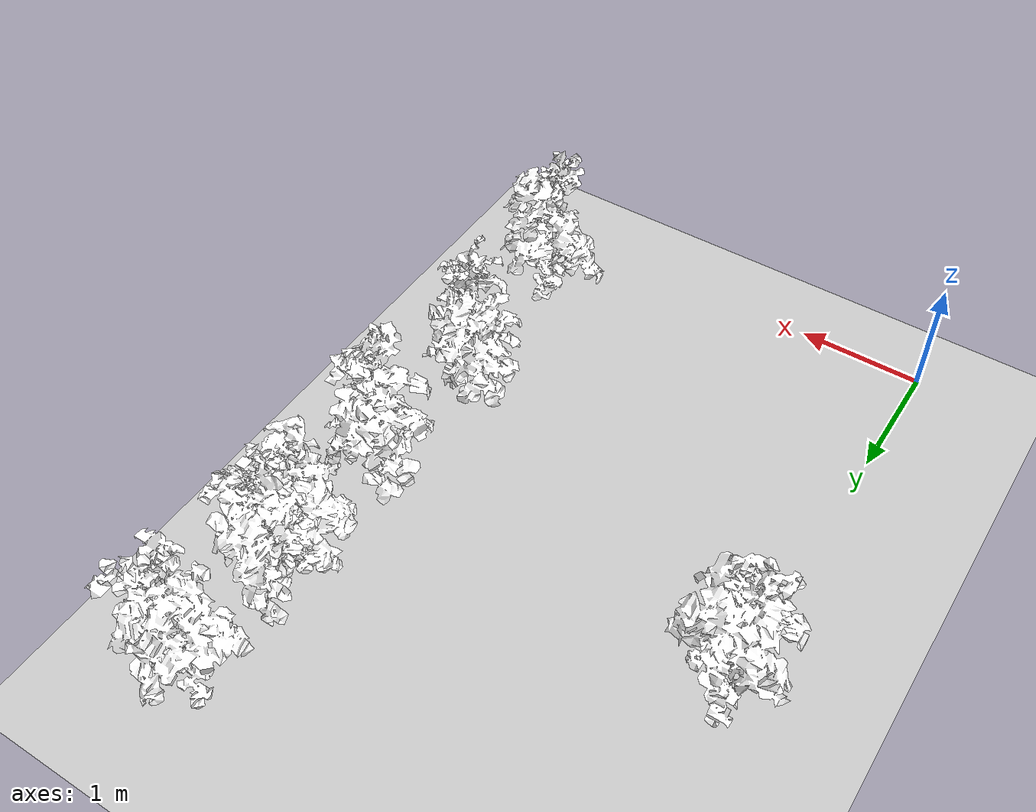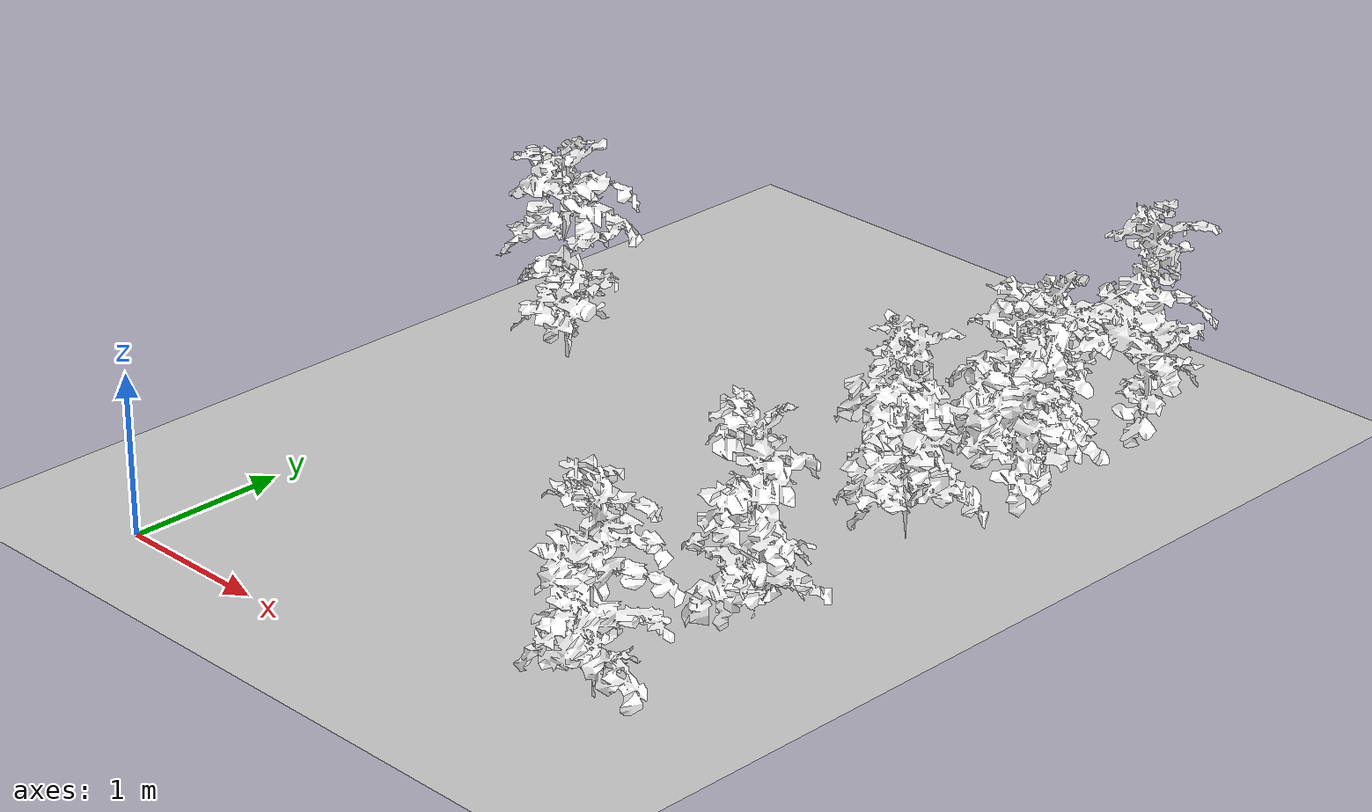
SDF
<sdf version="1.7">
 <world name="field">
  <physics name="1ms" type="ignored">
   <max_step_size>0.001</max_step_size>
   <real_time_factor>1</real_time_factor>
   <real_time_update_rate>1000</real_time_update_rate>
  </physics>
  <plugin name="ignition::gazebo::systems::Physics" filename="ignition-gazebo-physics-system"/>
  <plugin name="ignition::gazebo::systems::UserCommands" filename="ignition-gazebo-user-commands-system"/>
  <plugin name="ignition::gazebo::systems::SceneBroadcaster" filename="ignition-gazebo-scene-broadcaster-system"/>
  <plugin filename="ignition-gazebo-sensors-system" name="ignition::gazebo::systems::Sensors">
   <render_engine>ogre2</render_engine>
  </plugin>
  <scene><ambient>1 1 1 1</ambient><background>0.8 0.8 0.8 1</background><shadows>1</shadows></scene>
  <light name="sun" type="directional">
   <pose>0 0 10 0 -0 0</pose>
   <diffuse>0.8 0.8 0.8 1</diffuse>
   <specular>0.8 0.8 0.8 1</specular>
   <attenuation>
    <range>1000</range>
    <constant>0.9</constant>
    <linear>0.01</linear>
    <quadratic>0.001</quadratic>
   </attenuation>
   <direction>-0.5 0.1 -0.9</direction>
   <spot><inner_angle>0</inner_angle><outer_angle>0</outer_angle><falloff>0</falloff></spot>
  </light>
  <gravity>0 0 -9.8</gravity>
  <magnetic_field>6e-06 2.3e-05 -4.2e-05</magnetic_field>
  <atmosphere type="adiabatic"/>
  <include><uri>ground</uri><name>ground</name><pose>5.0 5.0 0 0 0 0</pose></include>
  <include><uri>tomato_11</uri><name>tomato_11</name><pose>0.0 3.3 0 0 0 0</pose></include>
  <include><uri>tomato_101</uri><name>tomato_101</name><pose>3.0999999999999996 0.6 0 0 0 0</pose></include>
  <include>
   <uri>tomato_105</uri>
   <name>tomato_105</name>
   <pose>3.0999999999999996 1.7999999999999998 0 0 0 0</pose>
  </include>
  <include><uri>tomato_109</uri><name>tomato_109</name><pose>3.0999999999999996 3.0 0 0 0 0</pose></include>
  <include><uri>tomato_112</uri><name>tomato_112</name><pose>3.0999999999999996 3.9 0 0 0 0</pose></include>
  <include><uri>tomato_113</uri><name>tomato_113</name><pose>3.0999999999999996 4.2 0 0 0 0</pose></include>
  <include><uri>tomato_116</uri><name>tomato_116</name><pose>3.0999999999999996 5.1 0 0 0 0</pose></include>
 </world>
</sdf>

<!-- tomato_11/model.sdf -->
<sdf version="1.6">
  <model name="tomato_11">
    <static>true</static>
    <link name="link">
      <collision name="collision">
        <geometry>
          <box>
            <size>.1 .1 1</size>
          </box>
        </geometry>
      </collision>
      <visual name="branch">
        <geometry>
          <mesh>
            <uri>file://tomato_11/meshes/tomato.dae</uri>
            <submesh>
              <name>Branch1</name>
            </submesh>
          </mesh>
        </geometry>
        <material>
          <diffuse>1.0 1.0 1.0</diffuse>
          <pbr>
            <metal>
              <albedo_map>file://tomato_11/materials/textures/AG15brn1.png</albedo_map>
            </metal>
          </pbr>
        </material>
          <plugin filename="ignition-gazebo-label-system" name="ignition::gazebo::systems::Label">
            <label>2</label>
          </plugin>
      </visual>
      <visual name="leaf1">
        <geometry>
          <mesh>
            <uri>file://tomato_11/meshes/tomato.dae</uri>
            <submesh>
              <name>Leaf1</name>
            </submesh>
          </mesh>
        </geometry>
        <material>
          <diffuse>1.0 1.0 1.0</diffuse>
          <pbr>
            <metal>
              <albedo_map>file://tomato_11/materials/textures/AG15lef1.png</albedo_map>
            </metal>
          </pbr>
        </material>
          <plugin filename="ignition-gazebo-label-system" name="ignition::gazebo::systems::Label">
            <label>3</label>
          </plugin>
      </visual>
      <visual name="leaf2">
        <geometry>
          <mesh>
            <uri>file://tomato_11/meshes/tomato.dae</uri>
            <submesh>
              <name>Leaf2</name>
            </submesh>
          </mesh>
        </geometry>
        <material>
          <diffuse>1.0 1.0 1.0</diffuse>
          <pbr>
            <metal>
              <albedo_map>file://tomato_11/materials/textures/AG15lef2.png</albedo_map>
            </metal>
          </pbr>
        </material>
          <plugin filename="ignition-gazebo-label-system" name="ignition::gazebo::systems::Label">
            <label>3</label>
          </plugin>
      </visual>
      <visual name="fruit1">
        <geometry>
          <mesh>
            <uri>file://tomato_11/meshes/tomato.dae</uri>
            <submesh>
              <name>Fruit1</name>
            </submesh>
          </mesh>
        </geometry>
        <material>
          <diffuse>1.0 1.0 1.0</diffuse>
          <pbr>
            <metal>
              <albedo_map>file://tomato_11/materials/textures/AG15frt1.png</albedo_map>
            </metal>
          </pbr>
        </material>
          <plugin filename="ignition-gazebo-label-system" name="ignition::gazebo::systems::Label">
            <label>4</label>
          </plugin>
      </visual>
      <visual name="fruit2">
        <geometry>
          <mesh>
            <uri>file://tomato_11/meshes/tomato.dae</uri>
            <submesh>
              <name>Fruit2</name>
            </submesh>
          </mesh>
        </geometry>
        <material>
          <diffuse>1.0 1.0 1.0</diffuse>
          <pbr>
            <metal>
              <albedo_map>file://tomato_11/materials/textures/AG15frt2.png</albedo_map>
            </metal>
          </pbr>
        </material>
          <plugin filename="ignition-gazebo-label-system" name="ignition::gazebo::systems::Label">
            <label>4</label>
          </plugin>
      </visual>
      <visual name="fruit3">
        <geometry>
          <mesh>
            <uri>file://tomato_11/meshes/tomato.dae</uri>
            <submesh>
              <name>Fruit3</name>
            </submesh>
          </mesh>
        </geometry>
        <material>
          <diffuse>1.0 1.0 1.0</diffuse>
          <pbr>
            <metal>
              <albedo_map>file://tomato_11/materials/textures/AG15frt3.png</albedo_map>
            </metal>
          </pbr>
        </material>
      </visual>
          <plugin filename="ignition-gazebo-label-system" name="ignition::gazebo::systems::Label">
            <label>4</label>
          </plugin>
      <visual name="fruit4">
        <geometry>
          <mesh>
            <uri>file://tomato_11/meshes/tomato.dae</uri>
            <submesh>
              <name>Fruit4</name>
            </submesh>
          </mesh>
        </geometry>
        <material>
          <diffuse>1.0 1.0 1.0</diffuse>
          <pbr>
            <metal>
              <albedo_map>file://tomato_11/materials/textures/AG15frt4.png</albedo_map>
            </metal>
          </pbr>
        </material>
          <plugin filename="ignition-gazebo-label-system" name="ignition::gazebo::systems::Label">
            <label>4</label>
          </plugin>
      </visual>
      <visual name="blossom1">
        <geometry>
          <mesh>
            <uri>file://tomato_11/meshes/tomato.dae</uri>
            <submesh>
              <name>Blossom1</name>
            </submesh>
          </mesh>
        </geometry>
        <material>
          <diffuse>1.0 1.0 1.0</diffuse>
          <pbr>
            <metal>
              <albedo_map>file://tomato_11/materials/textures/AG15blo1.png</albedo_map>
            </metal>
          </pbr>
        </material>
          <plugin filename="ignition-gazebo-label-system" name="ignition::gazebo::systems::Label">
            <label>5</label>
          </plugin>
      </visual>
      <visual name="blossom2">
        <geometry>
          <mesh>
            <uri>file://tomato_11/meshes/tomato.dae</uri>
            <submesh>
              <name>Blossom2</name>
            </submesh>
          </mesh>
        </geometry>
        <material>
          <diffuse>1.0 1.0 1.0</diffuse>
          <pbr>
            <metal>
              <albedo_map>file://tomato_11/materials/textures/AG15blo2.png</albedo_map>
            </metal>
          </pbr>
        </material>
          <plugin filename="ignition-gazebo-label-system" name="ignition::gazebo::systems::Label">
            <label>5</label>
          </plugin>
      </visual>
      <visual name="blossom3">
        <geometry>
          <mesh>
            <uri>file://tomato_11/meshes/tomato.dae</uri>
            <submesh>
              <name>Blossom3</name>
            </submesh>
          </mesh>
        </geometry>
        <material>
          <diffuse>1.0 1.0 1.0</diffuse>
          <pbr>
            <metal>
              <albedo_map>file://tomato_11/materials/textures/AG15blo3.png</albedo_map>
            </metal>
          </pbr>
        </material>
          <plugin filename="ignition-gazebo-label-system" name="ignition::gazebo::systems::Label">
            <label>5</label>
          </plugin>
      </visual>
    </link>
  </model>
</sdf>

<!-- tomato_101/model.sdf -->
<sdf version="1.6">
  <model name="tomato_101">
    <static>true</static>
    <link name="link">
      <collision name="collision">
        <geometry>
          <box>
            <size>.1 .1 1</size>
          </box>
        </geometry>
      </collision>
      <visual name="branch">
        <geometry>
          <mesh>
            <uri>file://tomato_101/meshes/tomato.dae</uri>
            <submesh>
              <name>Branch1</name>
            </submesh>
          </mesh>
        </geometry>
        <material>
          <diffuse>1.0 1.0 1.0</diffuse>
          <pbr>
            <metal>
              <albedo_map>file://tomato_101/materials/textures/AG15brn1.png</albedo_map>
            </metal>
          </pbr>
        </material>
      </visual>
      <visual name="leaf1">
        <geometry>
          <mesh>
            <uri>file://tomato_101/meshes/tomato.dae</uri>
            <submesh>
              <name>Leaf1</name>
            </submesh>
          </mesh>
        </geometry>
        <material>
          <diffuse>1.0 1.0 1.0</diffuse>
          <pbr>
            <metal>
              <albedo_map>file://tomato_101/materials/textures/AG15lef1.png</albedo_map>
            </metal>
          </pbr>
        </material>
      </visual>
      <visual name="leaf2">
        <geometry>
          <mesh>
            <uri>file://tomato_101/meshes/tomato.dae</uri>
            <submesh>
              <name>Leaf2</name>
            </submesh>
          </mesh>
        </geometry>
        <material>
          <diffuse>1.0 1.0 1.0</diffuse>
          <pbr>
            <metal>
              <albedo_map>file://tomato_101/materials/textures/AG15lef2.png</albedo_map>
            </metal>
          </pbr>
        </material>
      </visual>
      <visual name="fruit1">
        <geometry>
          <mesh>
            <uri>file://tomato_101/meshes/tomato.dae</uri>
            <submesh>
              <name>Fruit1</name>
            </submesh>
          </mesh>
        </geometry>
        <material>
          <diffuse>1.0 1.0 1.0</diffuse>
          <pbr>
            <metal>
              <albedo_map>file://tomato_101/materials/textures/AG15frt1.png</albedo_map>
            </metal>
          </pbr>
        </material>
      </visual>
      <visual name="fruit2">
        <geometry>
          <mesh>
            <uri>file://tomato_101/meshes/tomato.dae</uri>
            <submesh>
              <name>Fruit2</name>
            </submesh>
          </mesh>
        </geometry>
        <material>
          <diffuse>1.0 1.0 1.0</diffuse>
          <pbr>
            <metal>
              <albedo_map>file://tomato_101/materials/textures/AG15frt2.png</albedo_map>
            </metal>
          </pbr>
        </material>
      </visual>
      <visual name="fruit3">
        <geometry>
          <mesh>
            <uri>file://tomato_101/meshes/tomato.dae</uri>
            <submesh>
              <name>Fruit3</name>
            </submesh>
          </mesh>
        </geometry>
        <material>
          <diffuse>1.0 1.0 1.0</diffuse>
          <pbr>
            <metal>
              <albedo_map>file://tomato_101/materials/textures/AG15frt3.png</albedo_map>
            </metal>
          </pbr>
        </material>
      </visual>
      <visual name="fruit4">
        <geometry>
          <mesh>
            <uri>file://tomato_101/meshes/tomato.dae</uri>
            <submesh>
              <name>Fruit4</name>
            </submesh>
          </mesh>
        </geometry>
        <material>
          <diffuse>1.0 1.0 1.0</diffuse>
          <pbr>
            <metal>
              <albedo_map>file://tomato_101/materials/textures/AG15frt4.png</albedo_map>
            </metal>
          </pbr>
        </material>
      </visual>
      <visual name="blossom1">
        <geometry>
          <mesh>
            <uri>file://tomato_101/meshes/tomato.dae</uri>
            <submesh>
              <name>Blossom1</name>
            </submesh>
          </mesh>
        </geometry>
        <material>
          <diffuse>1.0 1.0 1.0</diffuse>
          <pbr>
            <metal>
              <albedo_map>file://tomato_101/materials/textures/AG15blo1.png</albedo_map>
            </metal>
          </pbr>
        </material>
      </visual>
      <visual name="blossom2">
        <geometry>
          <mesh>
            <uri>file://tomato_101/meshes/tomato.dae</uri>
            <submesh>
              <name>Blossom2</name>
            </submesh>
          </mesh>
        </geometry>
        <material>
          <diffuse>1.0 1.0 1.0</diffuse>
          <pbr>
            <metal>
              <albedo_map>file://tomato_101/materials/textures/AG15blo2.png</albedo_map>
            </metal>
          </pbr>
        </material>
      </visual>
      <visual name="blossom3">
        <geometry>
          <mesh>
            <uri>file://tomato_101/meshes/tomato.dae</uri>
            <submesh>
              <name>Blossom3</name>
            </submesh>
          </mesh>
        </geometry>
        <material>
          <diffuse>1.0 1.0 1.0</diffuse>
          <pbr>
            <metal>
              <albedo_map>file://tomato_101/materials/textures/AG15blo3.png</albedo_map>
            </metal>
          </pbr>
        </material>
      </visual>
    </link>
  </model>
</sdf>

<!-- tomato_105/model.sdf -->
<sdf version="1.6">
  <model name="tomato_105">
    <static>true</static>
    <link name="link">
      <collision name="collision">
        <geometry>
          <box>
            <size>.1 .1 1</size>
          </box>
        </geometry>
      </collision>
      <visual name="branch">
        <geometry>
          <mesh>
            <uri>file://tomato_105/meshes/tomato.dae</uri>
            <submesh>
              <name>Branch1</name>
            </submesh>
          </mesh>
        </geometry>
        <material>
          <diffuse>1.0 1.0 1.0</diffuse>
          <pbr>
            <metal>
              <albedo_map>file://tomato_105/materials/textures/AG15brn1.png</albedo_map>
            </metal>
          </pbr>
        </material>
      </visual>
      <visual name="leaf1">
        <geometry>
          <mesh>
            <uri>file://tomato_105/meshes/tomato.dae</uri>
            <submesh>
              <name>Leaf1</name>
            </submesh>
          </mesh>
        </geometry>
        <material>
          <diffuse>1.0 1.0 1.0</diffuse>
          <pbr>
            <metal>
              <albedo_map>file://tomato_105/materials/textures/AG15lef1.png</albedo_map>
            </metal>
          </pbr>
        </material>
      </visual>
      <visual name="leaf2">
        <geometry>
          <mesh>
            <uri>file://tomato_105/meshes/tomato.dae</uri>
            <submesh>
              <name>Leaf2</name>
            </submesh>
          </mesh>
        </geometry>
        <material>
          <diffuse>1.0 1.0 1.0</diffuse>
          <pbr>
            <metal>
              <albedo_map>file://tomato_105/materials/textures/AG15lef2.png</albedo_map>
            </metal>
          </pbr>
        </material>
      </visual>
      <visual name="fruit1">
        <geometry>
          <mesh>
            <uri>file://tomato_105/meshes/tomato.dae</uri>
            <submesh>
              <name>Fruit1</name>
            </submesh>
          </mesh>
        </geometry>
        <material>
          <diffuse>1.0 1.0 1.0</diffuse>
          <pbr>
            <metal>
              <albedo_map>file://tomato_105/materials/textures/AG15frt1.png</albedo_map>
            </metal>
          </pbr>
        </material>
      </visual>
      <visual name="fruit2">
        <geometry>
          <mesh>
            <uri>file://tomato_105/meshes/tomato.dae</uri>
            <submesh>
              <name>Fruit2</name>
            </submesh>
          </mesh>
        </geometry>
        <material>
          <diffuse>1.0 1.0 1.0</diffuse>
          <pbr>
            <metal>
              <albedo_map>file://tomato_105/materials/textures/AG15frt2.png</albedo_map>
            </metal>
          </pbr>
        </material>
      </visual>
      <visual name="fruit3">
        <geometry>
          <mesh>
            <uri>file://tomato_105/meshes/tomato.dae</uri>
            <submesh>
              <name>Fruit3</name>
            </submesh>
          </mesh>
        </geometry>
        <material>
          <diffuse>1.0 1.0 1.0</diffuse>
          <pbr>
            <metal>
              <albedo_map>file://tomato_105/materials/textures/AG15frt3.png</albedo_map>
            </metal>
          </pbr>
        </material>
      </visual>
      <visual name="fruit4">
        <geometry>
          <mesh>
            <uri>file://tomato_105/meshes/tomato.dae</uri>
            <submesh>
              <name>Fruit4</name>
            </submesh>
          </mesh>
        </geometry>
        <material>
          <diffuse>1.0 1.0 1.0</diffuse>
          <pbr>
            <metal>
              <albedo_map>file://tomato_105/materials/textures/AG15frt4.png</albedo_map>
            </metal>
          </pbr>
        </material>
      </visual>
      <visual name="blossom1">
        <geometry>
          <mesh>
            <uri>file://tomato_105/meshes/tomato.dae</uri>
            <submesh>
              <name>Blossom1</name>
            </submesh>
          </mesh>
        </geometry>
        <material>
          <diffuse>1.0 1.0 1.0</diffuse>
          <pbr>
            <metal>
              <albedo_map>file://tomato_105/materials/textures/AG15blo1.png</albedo_map>
            </metal>
          </pbr>
        </material>
      </visual>
      <visual name="blossom2">
        <geometry>
          <mesh>
            <uri>file://tomato_105/meshes/tomato.dae</uri>
            <submesh>
              <name>Blossom2</name>
            </submesh>
          </mesh>
        </geometry>
        <material>
          <diffuse>1.0 1.0 1.0</diffuse>
          <pbr>
            <metal>
              <albedo_map>file://tomato_105/materials/textures/AG15blo2.png</albedo_map>
            </metal>
          </pbr>
        </material>
      </visual>
      <visual name="blossom3">
        <geometry>
          <mesh>
            <uri>file://tomato_105/meshes/tomato.dae</uri>
            <submesh>
              <name>Blossom3</name>
            </submesh>
          </mesh>
        </geometry>
        <material>
          <diffuse>1.0 1.0 1.0</diffuse>
          <pbr>
            <metal>
              <albedo_map>file://tomato_105/materials/textures/AG15blo3.png</albedo_map>
            </metal>
          </pbr>
        </material>
      </visual>
    </link>
  </model>
</sdf>

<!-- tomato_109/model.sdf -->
<sdf version="1.6">
  <model name="tomato_109">
    <static>true</static>
    <link name="link">
      <collision name="collision">
        <geometry>
          <box>
            <size>.1 .1 1</size>
          </box>
        </geometry>
      </collision>
      <visual name="branch">
        <geometry>
          <mesh>
            <uri>file://tomato_109/meshes/tomato.dae</uri>
            <submesh>
              <name>Branch1</name>
            </submesh>
          </mesh>
        </geometry>
        <material>
          <diffuse>1.0 1.0 1.0</diffuse>
          <pbr>
            <metal>
              <albedo_map>file://tomato_109/materials/textures/AG15brn1.png</albedo_map>
            </metal>
          </pbr>
        </material>
      </visual>
      <visual name="leaf1">
        <geometry>
          <mesh>
            <uri>file://tomato_109/meshes/tomato.dae</uri>
            <submesh>
              <name>Leaf1</name>
            </submesh>
          </mesh>
        </geometry>
        <material>
          <diffuse>1.0 1.0 1.0</diffuse>
          <pbr>
            <metal>
              <albedo_map>file://tomato_109/materials/textures/AG15lef1.png</albedo_map>
            </metal>
          </pbr>
        </material>
      </visual>
      <visual name="leaf2">
        <geometry>
          <mesh>
            <uri>file://tomato_109/meshes/tomato.dae</uri>
            <submesh>
              <name>Leaf2</name>
            </submesh>
          </mesh>
        </geometry>
        <material>
          <diffuse>1.0 1.0 1.0</diffuse>
          <pbr>
            <metal>
              <albedo_map>file://tomato_109/materials/textures/AG15lef2.png</albedo_map>
            </metal>
          </pbr>
        </material>
      </visual>
      <visual name="fruit1">
        <geometry>
          <mesh>
            <uri>file://tomato_109/meshes/tomato.dae</uri>
            <submesh>
              <name>Fruit1</name>
            </submesh>
          </mesh>
        </geometry>
        <material>
          <diffuse>1.0 1.0 1.0</diffuse>
          <pbr>
            <metal>
              <albedo_map>file://tomato_109/materials/textures/AG15frt1.png</albedo_map>
            </metal>
          </pbr>
        </material>
      </visual>
      <visual name="fruit2">
        <geometry>
          <mesh>
            <uri>file://tomato_109/meshes/tomato.dae</uri>
            <submesh>
              <name>Fruit2</name>
            </submesh>
          </mesh>
        </geometry>
        <material>
          <diffuse>1.0 1.0 1.0</diffuse>
          <pbr>
            <metal>
              <albedo_map>file://tomato_109/materials/textures/AG15frt2.png</albedo_map>
            </metal>
          </pbr>
        </material>
      </visual>
      <visual name="fruit3">
        <geometry>
          <mesh>
            <uri>file://tomato_109/meshes/tomato.dae</uri>
            <submesh>
              <name>Fruit3</name>
            </submesh>
          </mesh>
        </geometry>
        <material>
          <diffuse>1.0 1.0 1.0</diffuse>
          <pbr>
            <metal>
              <albedo_map>file://tomato_109/materials/textures/AG15frt3.png</albedo_map>
            </metal>
          </pbr>
        </material>
      </visual>
      <visual name="fruit4">
        <geometry>
          <mesh>
            <uri>file://tomato_109/meshes/tomato.dae</uri>
            <submesh>
              <name>Fruit4</name>
            </submesh>
          </mesh>
        </geometry>
        <material>
          <diffuse>1.0 1.0 1.0</diffuse>
          <pbr>
            <metal>
              <albedo_map>file://tomato_109/materials/textures/AG15frt4.png</albedo_map>
            </metal>
          </pbr>
        </material>
      </visual>
      <visual name="blossom1">
        <geometry>
          <mesh>
            <uri>file://tomato_109/meshes/tomato.dae</uri>
            <submesh>
              <name>Blossom1</name>
            </submesh>
          </mesh>
        </geometry>
        <material>
          <diffuse>1.0 1.0 1.0</diffuse>
          <pbr>
            <metal>
              <albedo_map>file://tomato_109/materials/textures/AG15blo1.png</albedo_map>
            </metal>
          </pbr>
        </material>
      </visual>
      <visual name="blossom2">
        <geometry>
          <mesh>
            <uri>file://tomato_109/meshes/tomato.dae</uri>
            <submesh>
              <name>Blossom2</name>
            </submesh>
          </mesh>
        </geometry>
        <material>
          <diffuse>1.0 1.0 1.0</diffuse>
          <pbr>
            <metal>
              <albedo_map>file://tomato_109/materials/textures/AG15blo2.png</albedo_map>
            </metal>
          </pbr>
        </material>
      </visual>
      <visual name="blossom3">
        <geometry>
          <mesh>
            <uri>file://tomato_109/meshes/tomato.dae</uri>
            <submesh>
              <name>Blossom3</name>
            </submesh>
          </mesh>
        </geometry>
        <material>
          <diffuse>1.0 1.0 1.0</diffuse>
          <pbr>
            <metal>
              <albedo_map>file://tomato_109/materials/textures/AG15blo3.png</albedo_map>
            </metal>
          </pbr>
        </material>
      </visual>
    </link>
  </model>
</sdf>

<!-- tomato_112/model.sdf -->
<sdf version="1.6">
  <model name="tomato_112">
    <static>true</static>
    <link name="link">
      <collision name="collision">
        <geometry>
          <box>
            <size>.1 .1 1</size>
          </box>
        </geometry>
      </collision>
      <visual name="branch">
        <geometry>
          <mesh>
            <uri>file://tomato_112/meshes/tomato.dae</uri>
            <submesh>
              <name>Branch1</name>
            </submesh>
          </mesh>
        </geometry>
        <material>
          <diffuse>1.0 1.0 1.0</diffuse>
          <pbr>
            <metal>
              <albedo_map>file://tomato_112/materials/textures/AG15brn1.png</albedo_map>
            </metal>
          </pbr>
        </material>
      </visual>
      <visual name="leaf1">
        <geometry>
          <mesh>
            <uri>file://tomato_112/meshes/tomato.dae</uri>
            <submesh>
              <name>Leaf1</name>
            </submesh>
          </mesh>
        </geometry>
        <material>
          <diffuse>1.0 1.0 1.0</diffuse>
          <pbr>
            <metal>
              <albedo_map>file://tomato_112/materials/textures/AG15lef1.png</albedo_map>
            </metal>
          </pbr>
        </material>
      </visual>
      <visual name="leaf2">
        <geometry>
          <mesh>
            <uri>file://tomato_112/meshes/tomato.dae</uri>
            <submesh>
              <name>Leaf2</name>
            </submesh>
          </mesh>
        </geometry>
        <material>
          <diffuse>1.0 1.0 1.0</diffuse>
          <pbr>
            <metal>
              <albedo_map>file://tomato_112/materials/textures/AG15lef2.png</albedo_map>
            </metal>
          </pbr>
        </material>
      </visual>
      <visual name="fruit1">
        <geometry>
          <mesh>
            <uri>file://tomato_112/meshes/tomato.dae</uri>
            <submesh>
              <name>Fruit1</name>
            </submesh>
          </mesh>
        </geometry>
        <material>
          <diffuse>1.0 1.0 1.0</diffuse>
          <pbr>
            <metal>
              <albedo_map>file://tomato_112/materials/textures/AG15frt1.png</albedo_map>
            </metal>
          </pbr>
        </material>
      </visual>
      <visual name="fruit2">
        <geometry>
          <mesh>
            <uri>file://tomato_112/meshes/tomato.dae</uri>
            <submesh>
              <name>Fruit2</name>
            </submesh>
          </mesh>
        </geometry>
        <material>
          <diffuse>1.0 1.0 1.0</diffuse>
          <pbr>
            <metal>
              <albedo_map>file://tomato_112/materials/textures/AG15frt2.png</albedo_map>
            </metal>
          </pbr>
        </material>
      </visual>
      <visual name="fruit3">
        <geometry>
          <mesh>
            <uri>file://tomato_112/meshes/tomato.dae</uri>
            <submesh>
              <name>Fruit3</name>
            </submesh>
          </mesh>
        </geometry>
        <material>
          <diffuse>1.0 1.0 1.0</diffuse>
          <pbr>
            <metal>
              <albedo_map>file://tomato_112/materials/textures/AG15frt3.png</albedo_map>
            </metal>
          </pbr>
        </material>
      </visual>
      <visual name="fruit4">
        <geometry>
          <mesh>
            <uri>file://tomato_112/meshes/tomato.dae</uri>
            <submesh>
              <name>Fruit4</name>
            </submesh>
          </mesh>
        </geometry>
        <material>
          <diffuse>1.0 1.0 1.0</diffuse>
          <pbr>
            <metal>
              <albedo_map>file://tomato_112/materials/textures/AG15frt4.png</albedo_map>
            </metal>
          </pbr>
        </material>
      </visual>
      <visual name="blossom1">
        <geometry>
          <mesh>
            <uri>file://tomato_112/meshes/tomato.dae</uri>
            <submesh>
              <name>Blossom1</name>
            </submesh>
          </mesh>
        </geometry>
        <material>
          <diffuse>1.0 1.0 1.0</diffuse>
          <pbr>
            <metal>
              <albedo_map>file://tomato_112/materials/textures/AG15blo1.png</albedo_map>
            </metal>
          </pbr>
        </material>
      </visual>
      <visual name="blossom2">
        <geometry>
          <mesh>
            <uri>file://tomato_112/meshes/tomato.dae</uri>
            <submesh>
              <name>Blossom2</name>
            </submesh>
          </mesh>
        </geometry>
        <material>
          <diffuse>1.0 1.0 1.0</diffuse>
          <pbr>
            <metal>
              <albedo_map>file://tomato_112/materials/textures/AG15blo2.png</albedo_map>
            </metal>
          </pbr>
        </material>
      </visual>
      <visual name="blossom3">
        <geometry>
          <mesh>
            <uri>file://tomato_112/meshes/tomato.dae</uri>
            <submesh>
              <name>Blossom3</name>
            </submesh>
          </mesh>
        </geometry>
        <material>
          <diffuse>1.0 1.0 1.0</diffuse>
          <pbr>
            <metal>
              <albedo_map>file://tomato_112/materials/textures/AG15blo3.png</albedo_map>
            </metal>
          </pbr>
        </material>
      </visual>
    </link>
  </model>
</sdf>

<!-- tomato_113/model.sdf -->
<sdf version="1.6">
  <model name="tomato_113">
    <static>true</static>
    <link name="link">
      <collision name="collision">
        <geometry>
          <box>
            <size>.1 .1 1</size>
          </box>
        </geometry>
      </collision>
      <visual name="branch">
        <geometry>
          <mesh>
            <uri>file://tomato_113/meshes/tomato.dae</uri>
            <submesh>
              <name>Branch1</name>
            </submesh>
          </mesh>
        </geometry>
        <material>
          <diffuse>1.0 1.0 1.0</diffuse>
          <pbr>
            <metal>
              <albedo_map>file://tomato_113/materials/textures/AG15brn1.png</albedo_map>
            </metal>
          </pbr>
        </material>
      </visual>
      <visual name="leaf1">
        <geometry>
          <mesh>
            <uri>file://tomato_113/meshes/tomato.dae</uri>
            <submesh>
              <name>Leaf1</name>
            </submesh>
          </mesh>
        </geometry>
        <material>
          <diffuse>1.0 1.0 1.0</diffuse>
          <pbr>
            <metal>
              <albedo_map>file://tomato_113/materials/textures/AG15lef1.png</albedo_map>
            </metal>
          </pbr>
        </material>
      </visual>
      <visual name="leaf2">
        <geometry>
          <mesh>
            <uri>file://tomato_113/meshes/tomato.dae</uri>
            <submesh>
              <name>Leaf2</name>
            </submesh>
          </mesh>
        </geometry>
        <material>
          <diffuse>1.0 1.0 1.0</diffuse>
          <pbr>
            <metal>
              <albedo_map>file://tomato_113/materials/textures/AG15lef2.png</albedo_map>
            </metal>
          </pbr>
        </material>
      </visual>
      <visual name="fruit1">
        <geometry>
          <mesh>
            <uri>file://tomato_113/meshes/tomato.dae</uri>
            <submesh>
              <name>Fruit1</name>
            </submesh>
          </mesh>
        </geometry>
        <material>
          <diffuse>1.0 1.0 1.0</diffuse>
          <pbr>
            <metal>
              <albedo_map>file://tomato_113/materials/textures/AG15frt1.png</albedo_map>
            </metal>
          </pbr>
        </material>
      </visual>
      <visual name="fruit2">
        <geometry>
          <mesh>
            <uri>file://tomato_113/meshes/tomato.dae</uri>
            <submesh>
              <name>Fruit2</name>
            </submesh>
          </mesh>
        </geometry>
        <material>
          <diffuse>1.0 1.0 1.0</diffuse>
          <pbr>
            <metal>
              <albedo_map>file://tomato_113/materials/textures/AG15frt2.png</albedo_map>
            </metal>
          </pbr>
        </material>
      </visual>
      <visual name="fruit3">
        <geometry>
          <mesh>
            <uri>file://tomato_113/meshes/tomato.dae</uri>
            <submesh>
              <name>Fruit3</name>
            </submesh>
          </mesh>
        </geometry>
        <material>
          <diffuse>1.0 1.0 1.0</diffuse>
          <pbr>
            <metal>
              <albedo_map>file://tomato_113/materials/textures/AG15frt3.png</albedo_map>
            </metal>
          </pbr>
        </material>
      </visual>
      <visual name="fruit4">
        <geometry>
          <mesh>
            <uri>file://tomato_113/meshes/tomato.dae</uri>
            <submesh>
              <name>Fruit4</name>
            </submesh>
          </mesh>
        </geometry>
        <material>
          <diffuse>1.0 1.0 1.0</diffuse>
          <pbr>
            <metal>
              <albedo_map>file://tomato_113/materials/textures/AG15frt4.png</albedo_map>
            </metal>
          </pbr>
        </material>
      </visual>
      <visual name="blossom1">
        <geometry>
          <mesh>
            <uri>file://tomato_113/meshes/tomato.dae</uri>
            <submesh>
              <name>Blossom1</name>
            </submesh>
          </mesh>
        </geometry>
        <material>
          <diffuse>1.0 1.0 1.0</diffuse>
          <pbr>
            <metal>
              <albedo_map>file://tomato_113/materials/textures/AG15blo1.png</albedo_map>
            </metal>
          </pbr>
        </material>
      </visual>
      <visual name="blossom2">
        <geometry>
          <mesh>
            <uri>file://tomato_113/meshes/tomato.dae</uri>
            <submesh>
              <name>Blossom2</name>
            </submesh>
          </mesh>
        </geometry>
        <material>
          <diffuse>1.0 1.0 1.0</diffuse>
          <pbr>
            <metal>
              <albedo_map>file://tomato_113/materials/textures/AG15blo2.png</albedo_map>
            </metal>
          </pbr>
        </material>
      </visual>
      <visual name="blossom3">
        <geometry>
          <mesh>
            <uri>file://tomato_113/meshes/tomato.dae</uri>
            <submesh>
              <name>Blossom3</name>
            </submesh>
          </mesh>
        </geometry>
        <material>
          <diffuse>1.0 1.0 1.0</diffuse>
          <pbr>
            <metal>
              <albedo_map>file://tomato_113/materials/textures/AG15blo3.png</albedo_map>
            </metal>
          </pbr>
        </material>
      </visual>
    </link>
  </model>
</sdf>

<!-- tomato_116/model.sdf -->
<sdf version="1.6">
  <model name="tomato_116">
    <static>true</static>
    <link name="link">
      <collision name="collision">
        <geometry>
          <box>
            <size>.1 .1 1</size>
          </box>
        </geometry>
      </collision>
      <visual name="branch">
        <geometry>
          <mesh>
            <uri>file://tomato_116/meshes/tomato.dae</uri>
            <submesh>
              <name>Branch1</name>
            </submesh>
          </mesh>
        </geometry>
        <material>
          <diffuse>1.0 1.0 1.0</diffuse>
          <pbr>
            <metal>
              <albedo_map>file://tomato_116/materials/textures/AG15brn1.png</albedo_map>
            </metal>
          </pbr>
        </material>
      </visual>
      <visual name="leaf1">
        <geometry>
          <mesh>
            <uri>file://tomato_116/meshes/tomato.dae</uri>
            <submesh>
              <name>Leaf1</name>
            </submesh>
          </mesh>
        </geometry>
        <material>
          <diffuse>1.0 1.0 1.0</diffuse>
          <pbr>
            <metal>
              <albedo_map>file://tomato_116/materials/textures/AG15lef1.png</albedo_map>
            </metal>
          </pbr>
        </material>
      </visual>
      <visual name="leaf2">
        <geometry>
          <mesh>
            <uri>file://tomato_116/meshes/tomato.dae</uri>
            <submesh>
              <name>Leaf2</name>
            </submesh>
          </mesh>
        </geometry>
        <material>
          <diffuse>1.0 1.0 1.0</diffuse>
          <pbr>
            <metal>
              <albedo_map>file://tomato_116/materials/textures/AG15lef2.png</albedo_map>
            </metal>
          </pbr>
        </material>
      </visual>
      <visual name="fruit1">
        <geometry>
          <mesh>
            <uri>file://tomato_116/meshes/tomato.dae</uri>
            <submesh>
              <name>Fruit1</name>
            </submesh>
          </mesh>
        </geometry>
        <material>
          <diffuse>1.0 1.0 1.0</diffuse>
          <pbr>
            <metal>
              <albedo_map>file://tomato_116/materials/textures/AG15frt1.png</albedo_map>
            </metal>
          </pbr>
        </material>
      </visual>
      <visual name="fruit2">
        <geometry>
          <mesh>
            <uri>file://tomato_116/meshes/tomato.dae</uri>
            <submesh>
              <name>Fruit2</name>
            </submesh>
          </mesh>
        </geometry>
        <material>
          <diffuse>1.0 1.0 1.0</diffuse>
          <pbr>
            <metal>
              <albedo_map>file://tomato_116/materials/textures/AG15frt2.png</albedo_map>
            </metal>
          </pbr>
        </material>
      </visual>
      <visual name="fruit3">
        <geometry>
          <mesh>
            <uri>file://tomato_116/meshes/tomato.dae</uri>
            <submesh>
              <name>Fruit3</name>
            </submesh>
          </mesh>
        </geometry>
        <material>
          <diffuse>1.0 1.0 1.0</diffuse>
          <pbr>
            <metal>
              <albedo_map>file://tomato_116/materials/textures/AG15frt3.png</albedo_map>
            </metal>
          </pbr>
        </material>
      </visual>
      <visual name="fruit4">
        <geometry>
          <mesh>
            <uri>file://tomato_116/meshes/tomato.dae</uri>
            <submesh>
              <name>Fruit4</name>
            </submesh>
          </mesh>
        </geometry>
        <material>
          <diffuse>1.0 1.0 1.0</diffuse>
          <pbr>
            <metal>
              <albedo_map>file://tomato_116/materials/textures/AG15frt4.png</albedo_map>
            </metal>
          </pbr>
        </material>
      </visual>
      <visual name="blossom1">
        <geometry>
          <mesh>
            <uri>file://tomato_116/meshes/tomato.dae</uri>
            <submesh>
              <name>Blossom1</name>
            </submesh>
          </mesh>
        </geometry>
        <material>
          <diffuse>1.0 1.0 1.0</diffuse>
          <pbr>
            <metal>
              <albedo_map>file://tomato_116/materials/textures/AG15blo1.png</albedo_map>
            </metal>
          </pbr>
        </material>
      </visual>
      <visual name="blossom2">
        <geometry>
          <mesh>
            <uri>file://tomato_116/meshes/tomato.dae</uri>
            <submesh>
              <name>Blossom2</name>
            </submesh>
          </mesh>
        </geometry>
        <material>
          <diffuse>1.0 1.0 1.0</diffuse>
          <pbr>
            <metal>
              <albedo_map>file://tomato_116/materials/textures/AG15blo2.png</albedo_map>
            </metal>
          </pbr>
        </material>
      </visual>
      <visual name="blossom3">
        <geometry>
          <mesh>
            <uri>file://tomato_116/meshes/tomato.dae</uri>
            <submesh>
              <name>Blossom3</name>
            </submesh>
          </mesh>
        </geometry>
        <material>
          <diffuse>1.0 1.0 1.0</diffuse>
          <pbr>
            <metal>
              <albedo_map>file://tomato_116/materials/textures/AG15blo3.png</albedo_map>
            </metal>
          </pbr>
        </material>
      </visual>
    </link>
  </model>
</sdf>
